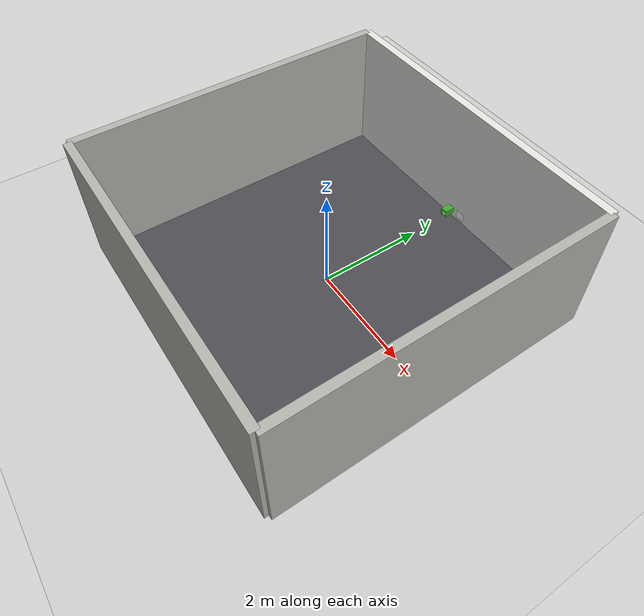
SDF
<?xml version="1.0"?>
<sdf version="1.6">
  <world name="default">
    <plugin filename="gz-sim-physics-system" name="gz::sim::systems::Physics"/>
    <plugin filename="gz-sim-user-commands-system" name="gz::sim::systems::UserCommands"/>
    <plugin filename="gz-sim-scene-broadcaster-system" name="gz::sim::systems::SceneBroadcaster"/>
    <plugin filename="gz-sim-sensors-system" name="gz::sim::systems::Sensors">
      <render_engine>ogre2</render_engine>
    </plugin>
    <plugin filename="gz-sim-imu-system" name="gz::sim::systems::Imu"/>

    <include>
      <uri>https://fuel.gazebosim.org/1.0/OpenRobotics/models/Ground Plane</uri>
    </include>
    <include>
      <uri>https://fuel.gazebosim.org/1.0/OpenRobotics/models/Sun</uri>
    </include>

    <gui fullscreen='0'>
      <camera name='user_camera'>
        <pose>0 -6 8 0 0.9 1.57</pose>
        <view_controller>orbit</view_controller>
      </camera>
    </gui>

    <physics type="ode">
      <real_time_update_rate>1000.0</real_time_update_rate>
      <max_step_size>0.001</max_step_size>
      <real_time_factor>1</real_time_factor>
      <ode>
        <solver>
          <type>quick</type>
          <iters>150</iters>
          <sor>1.4</sor>
          <use_dynamic_moi_rescaling>1</use_dynamic_moi_rescaling>
        </solver>
      </ode>
    </physics>

    <!-- Docking Arena: 6m x 6m room with flat walls                  -->
    <!-- Robot spawns at center (0,0), docking wall is north (+Y)     -->

    <!-- Floor (colored slightly so you can see boundaries) -->
    <model name="arena_floor">
      <static>true</static>
      <link name="floor_link">
        <visual name="floor_visual">
          <pose>0 0 0.001 0 0 0</pose>
          <geometry><box><size>6 6 0.002</size></box></geometry>
          <material>
            <ambient>0.3 0.3 0.32 1</ambient>
            <diffuse>0.3 0.3 0.32 1</diffuse>
          </material>
        </visual>
      </link>
    </model>

    <!-- North wall (docking wall) - the target wall -->
    <model name="wall_north">
      <static>true</static>
      <link name="link">
        <pose>0 3.0 1.25 0 0 0</pose>
        <collision name="col">
          <geometry><box><size>6 0.15 2.5</size></box></geometry>
        </collision>
        <visual name="vis">
          <geometry><box><size>6 0.15 2.5</size></box></geometry>
          <material>
            <ambient>0.9 0.9 0.88 1</ambient>
            <diffuse>0.9 0.9 0.88 1</diffuse>
          </material>
        </visual>
      </link>
    </model>

    <!-- South wall -->
    <model name="wall_south">
      <static>true</static>
      <link name="link">
        <pose>0 -3.0 1.25 0 0 0</pose>
        <collision name="col">
          <geometry><box><size>6 0.15 2.5</size></box></geometry>
        </collision>
        <visual name="vis">
          <geometry><box><size>6 0.15 2.5</size></box></geometry>
          <material>
            <ambient>0.7 0.7 0.68 1</ambient>
            <diffuse>0.7 0.7 0.68 1</diffuse>
          </material>
        </visual>
      </link>
    </model>

    <!-- East wall -->
    <model name="wall_east">
      <static>true</static>
      <link name="link">
        <pose>3.0 0 1.25 0 0 0</pose>
        <collision name="col">
          <geometry><box><size>0.15 6 2.5</size></box></geometry>
        </collision>
        <visual name="vis">
          <geometry><box><size>0.15 6 2.5</size></box></geometry>
          <material>
            <ambient>0.7 0.7 0.68 1</ambient>
            <diffuse>0.7 0.7 0.68 1</diffuse>
          </material>
        </visual>
      </link>
    </model>

    <!-- West wall -->
    <model name="wall_west">
      <static>true</static>
      <link name="link">
        <pose>-3.0 0 1.25 0 0 0</pose>
        <collision name="col">
          <geometry><box><size>0.15 6 2.5</size></box></geometry>
        </collision>
        <visual name="vis">
          <geometry><box><size>0.15 6 2.5</size></box></geometry>
          <material>
            <ambient>0.7 0.7 0.68 1</ambient>
            <diffuse>0.7 0.7 0.68 1</diffuse>
          </material>
        </visual>
      </link>
    </model>

    <!-- Milo tin can MOUNTED ON north wall -->
    <!-- STL: Y-axis is cylinder height (0..200mm), X/Z are circular cross-section -->
    <!-- Scale 0.001 => 0.1345m dia x 0.210m tall -->
    <!-- Yaw=pi flips STL Y to Gazebo -Y: cylinder sticks out from wall toward robot -->
    <!-- Wall inner face at y=2.925, tin extends ~0.2m toward robot (to y~2.73) -->
    <!-- z=0.15 = TurtleBot camera height -->
    <model name="milo_tin">
      <static>true</static>
      <pose>0 2.925 0.15 0 0 3.14159</pose>
      <include>
        <uri>model://milo_tin</uri>
      </include>
    </model>

    <!-- ArUco marker ID 42 (DICT_4X4_50) on north wall, next to tin -->
    <!-- Flat against wall: wall face is at y=2.925 (wall center 3.0 - half thickness 0.075) -->
    <!-- Marker faces south (-Y) so robot can see it approaching from y=0 -->
    <!-- Rotated: face south = rotate 90 deg around X so marker normal points -Y -->
    <model name="aruco_marker_42">
      <static>true</static>
      <pose>0.25 2.92 0.15 1.5708 0 0</pose>
      <include>
        <uri>model://aruco_marker</uri>
      </include>
    </model>

  </world>
</sdf>

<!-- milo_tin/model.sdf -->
<sdf version="1.6">
  <model name="milo_tin">
    <static>true</static>
    <link name="link">
      <visual name="visual">
        <geometry>
          <mesh>
            <uri>meshes/milo_tin.stl</uri>
            <scale>0.001 0.001 0.001</scale>
          </mesh>
        </geometry>
        <material>
          <ambient>0.2 0.6 0.15 1</ambient>
          <diffuse>0.25 0.65 0.2 1</diffuse>
          <specular>0.3 0.3 0.3 1</specular>
        </material>
      </visual>
      <collision name="collision">
        <geometry>
          <cylinder>
            <radius>0.0673</radius>
            <length>0.210</length>
          </cylinder>
        </geometry>
      </collision>
    </link>
  </model>
</sdf>

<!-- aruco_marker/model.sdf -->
<sdf version="1.6">
  <model name="aruco_marker">
    <static>true</static>
    <link name="link">
      <visual name="visual">
        <geometry>
          <box>
            <size>0.18 0.18 0.002</size>
          </box>
        </geometry>
        <material>
          <pbr>
            <metal>
              <albedo_map>materials/textures/aruco_42.png</albedo_map>
            </metal>
          </pbr>
          <ambient>1 1 1 1</ambient>
          <diffuse>1 1 1 1</diffuse>
        </material>
      </visual>
      <collision name="collision">
        <geometry>
          <box>
            <size>0.18 0.18 0.002</size>
          </box>
        </geometry>
      </collision>
    </link>
  </model>
</sdf>
